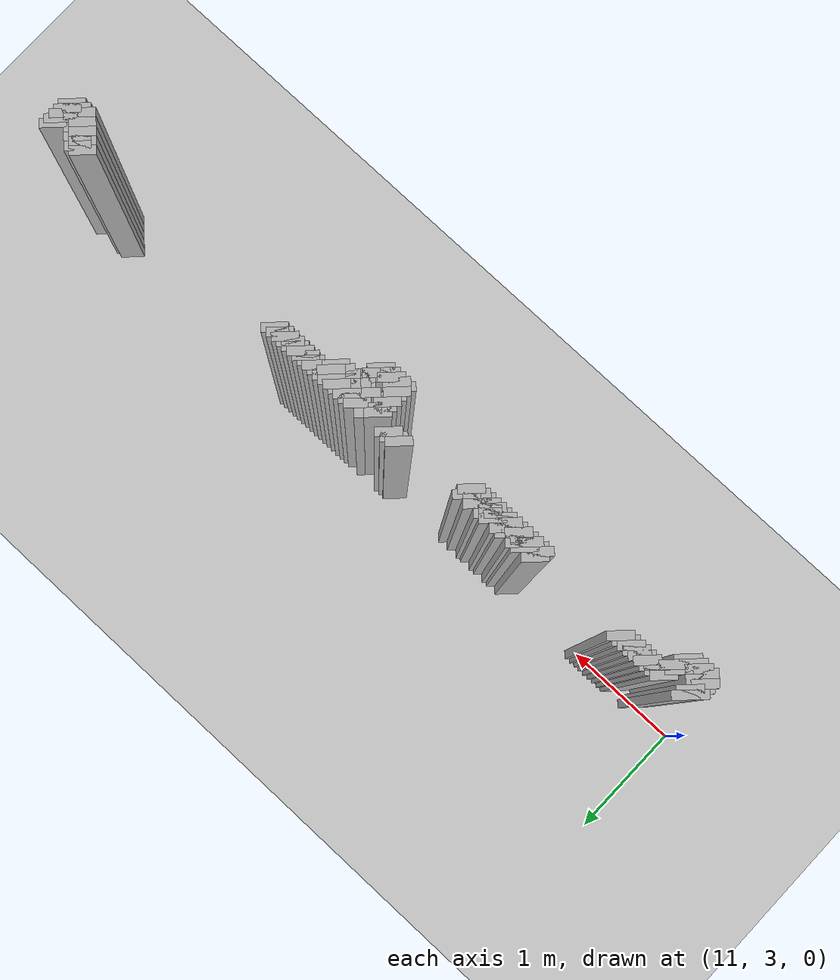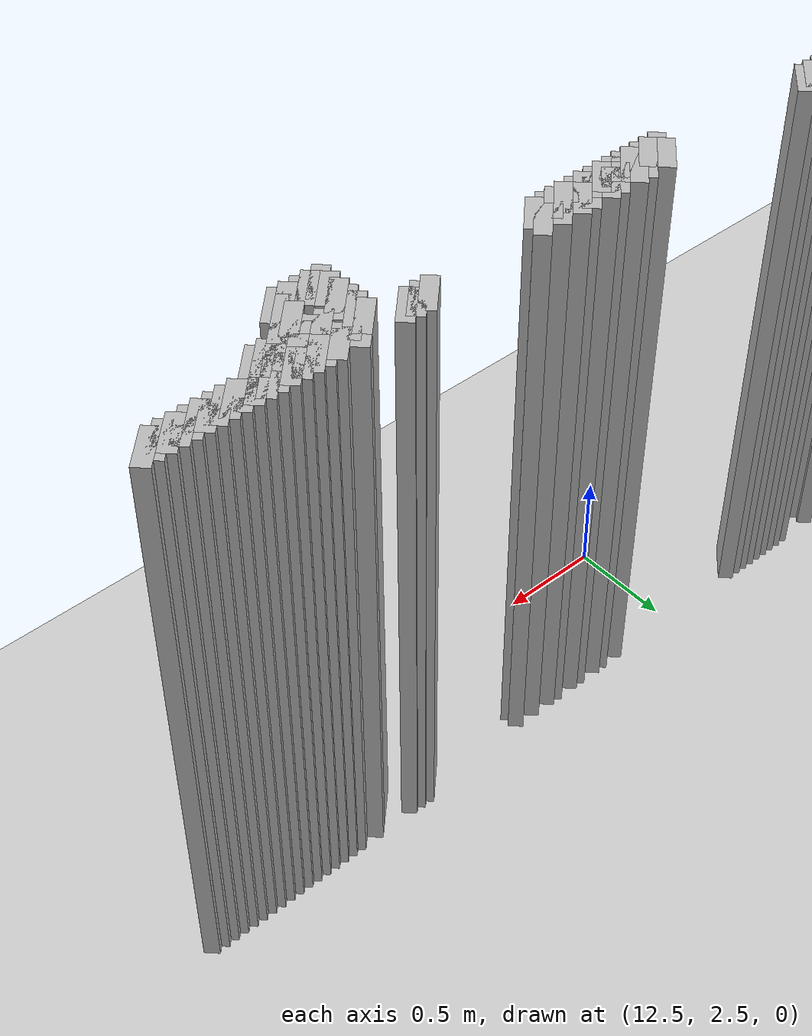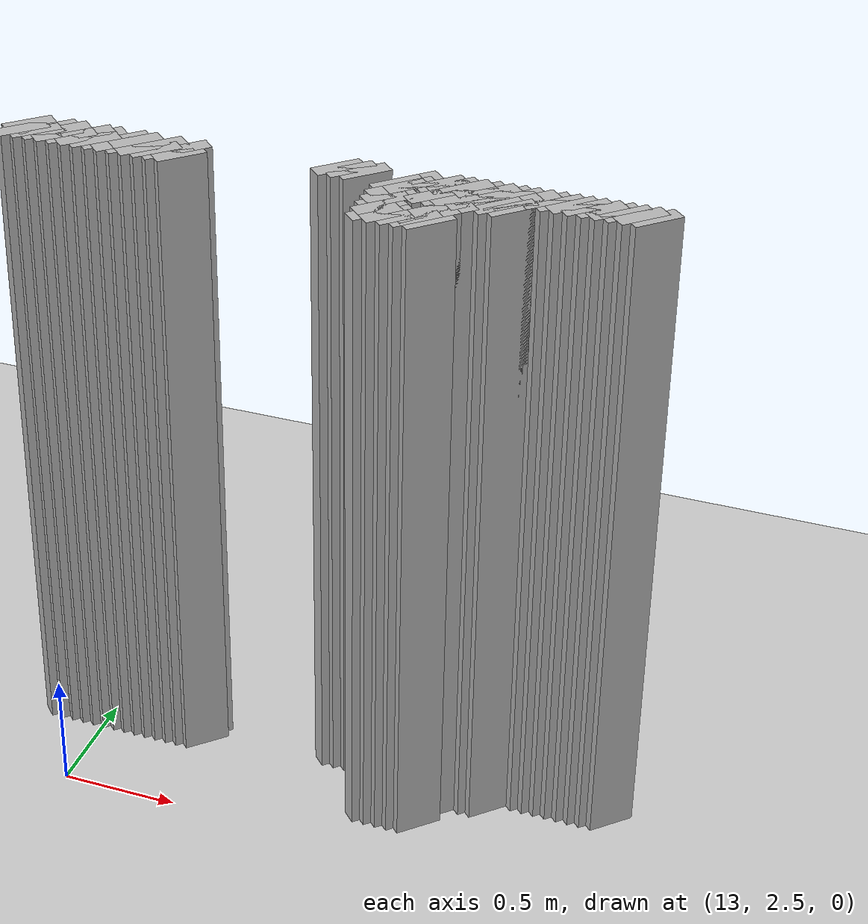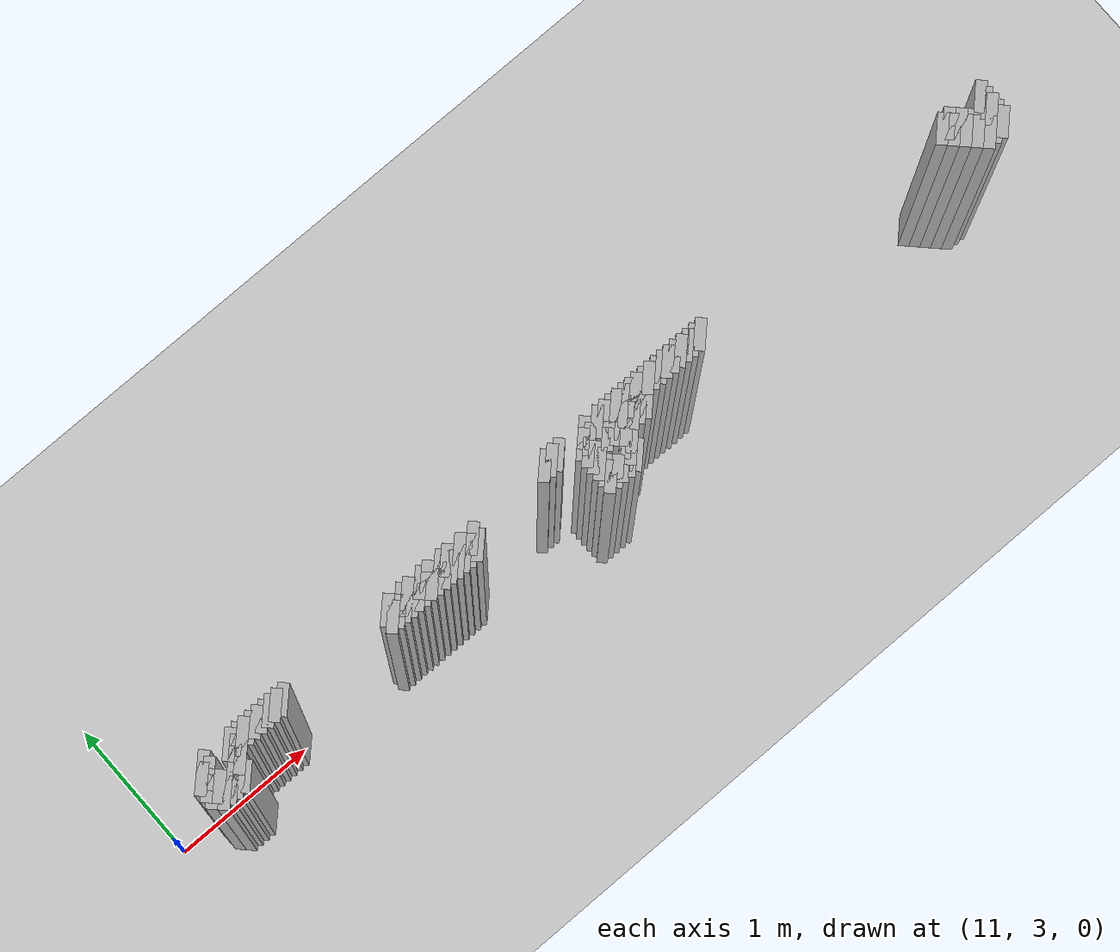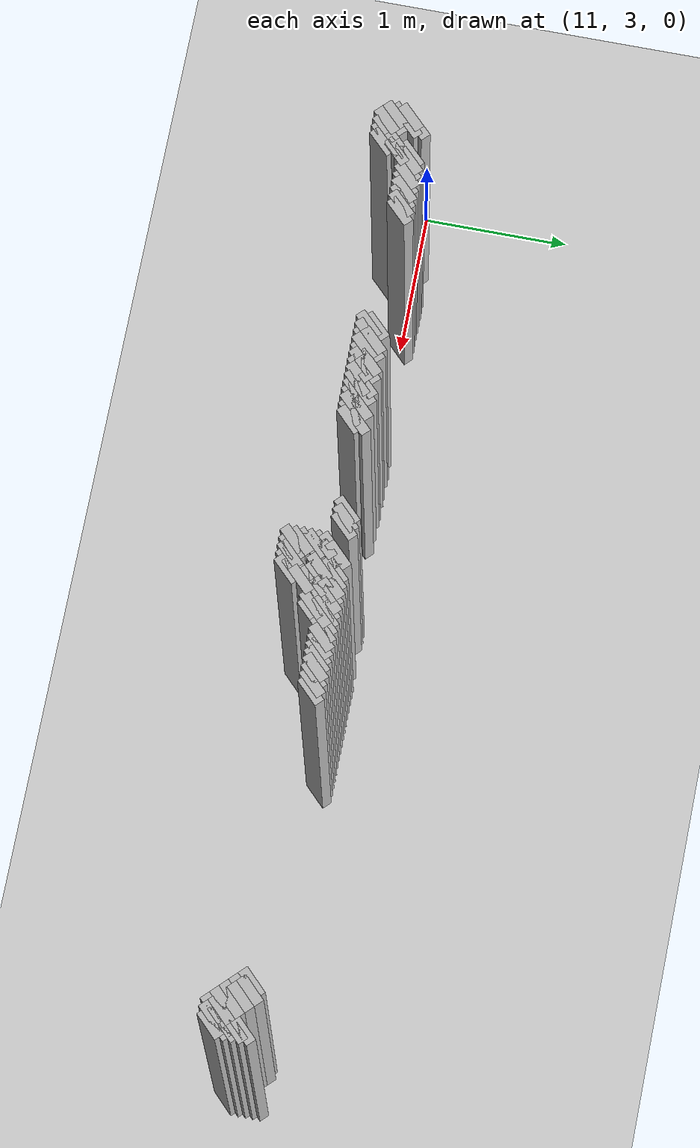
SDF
<sdf version="1.5">
 <world name="default">
  <include><uri>model://ground_plane</uri></include>
  <include><uri>model://sun</uri></include>
  <model name="grey_wall_3818">
   <static>1</static>
   <link name="link">
    <pose>14.05 3.0500000000000003  1.4 0 0 -0.7853981633974394</pose>
    <collision name="collision">
     <geometry><box><size>0.07071067811865513 .2  2.8</size></box></geometry>
    </collision>
    <visual name="visual">
     <cast_shadows>0</cast_shadows>
     <geometry><box><size>0.07071067811865513 .2  2.8</size></box></geometry>
    </visual>
   </link>
  </model>
  <model name="grey_wall_3819">
   <static>1</static>
   <link name="link">
    <pose>14.100000000000001 3.0500000000000003  1.4 0 0 -0.7853981633974394</pose>
    <collision name="collision">
     <geometry><box><size>0.07071067811865513 .2  2.8</size></box></geometry>
    </collision>
    <visual name="visual">
     <cast_shadows>0</cast_shadows>
     <geometry><box><size>0.07071067811865513 .2  2.8</size></box></geometry>
    </visual>
   </link>
  </model>
  <model name="grey_wall_3820">
   <static>1</static>
   <link name="link">
    <pose>14.15 3.0500000000000003  1.4 0 0 -0.7853981633974394</pose>
    <collision name="collision">
     <geometry><box><size>0.07071067811865513 .2  2.8</size></box></geometry>
    </collision>
    <visual name="visual">
     <cast_shadows>0</cast_shadows>
     <geometry><box><size>0.07071067811865513 .2  2.8</size></box></geometry>
    </visual>
   </link>
  </model>
  <model name="grey_wall_3821">
   <static>1</static>
   <link name="link">
    <pose>14.350000000000001 3.0500000000000003  1.4 0 0 -0.7853981633974394</pose>
    <collision name="collision">
     <geometry><box><size>0.07071067811865513 .2  2.8</size></box></geometry>
    </collision>
    <visual name="visual">
     <cast_shadows>0</cast_shadows>
     <geometry><box><size>0.07071067811865513 .2  2.8</size></box></geometry>
    </visual>
   </link>
  </model>
  <model name="grey_wall_3822">
   <static>1</static>
   <link name="link">
    <pose>14.450000000000001 3.0500000000000003  1.4 0 0 -0.7853981633974394</pose>
    <collision name="collision">
     <geometry><box><size>0.07071067811865513 .2  2.8</size></box></geometry>
    </collision>
    <visual name="visual">
     <cast_shadows>0</cast_shadows>
     <geometry><box><size>0.07071067811865513 .2  2.8</size></box></geometry>
    </visual>
   </link>
  </model>
  <model name="grey_wall_3823">
   <static>1</static>
   <link name="link">
    <pose>14.5 3.0500000000000003  1.4 0 0 -0.7853981633974394</pose>
    <collision name="collision">
     <geometry><box><size>0.07071067811865513 .2  2.8</size></box></geometry>
    </collision>
    <visual name="visual">
     <cast_shadows>0</cast_shadows>
     <geometry><box><size>0.07071067811865513 .2  2.8</size></box></geometry>
    </visual>
   </link>
  </model>
  <model name="grey_wall_3824">
   <static>1</static>
   <link name="link">
    <pose>14.55 3.0500000000000003  1.4 0 0 -0.7853981633974394</pose>
    <collision name="collision">
     <geometry><box><size>0.07071067811865513 .2  2.8</size></box></geometry>
    </collision>
    <visual name="visual">
     <cast_shadows>0</cast_shadows>
     <geometry><box><size>0.07071067811865513 .2  2.8</size></box></geometry>
    </visual>
   </link>
  </model>
  <model name="grey_wall_3825">
   <static>1</static>
   <link name="link">
    <pose>14.600000000000001 3.0500000000000003  1.4 0 0 -0.7853981633974394</pose>
    <collision name="collision">
     <geometry><box><size>0.07071067811865513 .2  2.8</size></box></geometry>
    </collision>
    <visual name="visual">
     <cast_shadows>0</cast_shadows>
     <geometry><box><size>0.07071067811865513 .2  2.8</size></box></geometry>
    </visual>
   </link>
  </model>
  <model name="grey_wall_3826">
   <static>1</static>
   <link name="link">
    <pose>14.65 3.0500000000000003  1.4 0 0 -0.7853981633974394</pose>
    <collision name="collision">
     <geometry><box><size>0.07071067811865513 .2  2.8</size></box></geometry>
    </collision>
    <visual name="visual">
     <cast_shadows>0</cast_shadows>
     <geometry><box><size>0.07071067811865513 .2  2.8</size></box></geometry>
    </visual>
   </link>
  </model>
  <model name="grey_wall_3827">
   <static>1</static>
   <link name="link">
    <pose>14.700000000000001 3.0500000000000003  1.4 0 0 -0.7853981633974394</pose>
    <collision name="collision">
     <geometry><box><size>0.07071067811865513 .2  2.8</size></box></geometry>
    </collision>
    <visual name="visual">
     <cast_shadows>0</cast_shadows>
     <geometry><box><size>0.07071067811865513 .2  2.8</size></box></geometry>
    </visual>
   </link>
  </model>
  <model name="grey_wall_3828">
   <static>1</static>
   <link name="link">
    <pose>14.75 3.0500000000000003  1.4 0 0 -0.7853981633974394</pose>
    <collision name="collision">
     <geometry><box><size>0.07071067811865513 .2  2.8</size></box></geometry>
    </collision>
    <visual name="visual">
     <cast_shadows>0</cast_shadows>
     <geometry><box><size>0.07071067811865513 .2  2.8</size></box></geometry>
    </visual>
   </link>
  </model>
  <model name="grey_wall_3829">
   <static>1</static>
   <link name="link">
    <pose>14.8 3.0500000000000003  1.4 0 0 -0.7853981633974394</pose>
    <collision name="collision">
     <geometry><box><size>0.07071067811865513 .2  2.8</size></box></geometry>
    </collision>
    <visual name="visual">
     <cast_shadows>0</cast_shadows>
     <geometry><box><size>0.07071067811865513 .2  2.8</size></box></geometry>
    </visual>
   </link>
  </model>
  <model name="grey_wall_3830">
   <static>1</static>
   <link name="link">
    <pose>14.850000000000001 3.0500000000000003  1.4 0 0 -0.7853981633974394</pose>
    <collision name="collision">
     <geometry><box><size>0.07071067811865513 .2  2.8</size></box></geometry>
    </collision>
    <visual name="visual">
     <cast_shadows>0</cast_shadows>
     <geometry><box><size>0.07071067811865513 .2  2.8</size></box></geometry>
    </visual>
   </link>
  </model>
  <model name="grey_wall_3831">
   <static>1</static>
   <link name="link">
    <pose>14.9 3.0500000000000003  1.4 0 0 -0.7853981633974394</pose>
    <collision name="collision">
     <geometry><box><size>0.07071067811865513 .2  2.8</size></box></geometry>
    </collision>
    <visual name="visual">
     <cast_shadows>0</cast_shadows>
     <geometry><box><size>0.07071067811865513 .2  2.8</size></box></geometry>
    </visual>
   </link>
  </model>
  <model name="grey_wall_3832">
   <static>1</static>
   <link name="link">
    <pose>14.950000000000001 3.0500000000000003  1.4 0 0 -0.7853981633974394</pose>
    <collision name="collision">
     <geometry><box><size>0.07071067811865513 .2  2.8</size></box></geometry>
    </collision>
    <visual name="visual">
     <cast_shadows>0</cast_shadows>
     <geometry><box><size>0.07071067811865513 .2  2.8</size></box></geometry>
    </visual>
   </link>
  </model>
  <model name="grey_wall_3833">
   <static>1</static>
   <link name="link">
    <pose>15.0 3.0500000000000003  1.4 0 0 -0.7853981633974394</pose>
    <collision name="collision">
     <geometry><box><size>0.07071067811865513 .2  2.8</size></box></geometry>
    </collision>
    <visual name="visual">
     <cast_shadows>0</cast_shadows>
     <geometry><box><size>0.07071067811865513 .2  2.8</size></box></geometry>
    </visual>
   </link>
  </model>
  <model name="grey_wall_3834">
   <static>1</static>
   <link name="link">
    <pose>15.05 3.0500000000000003  1.4 0 0 -0.7853981633974394</pose>
    <collision name="collision">
     <geometry><box><size>0.07071067811865513 .2  2.8</size></box></geometry>
    </collision>
    <visual name="visual">
     <cast_shadows>0</cast_shadows>
     <geometry><box><size>0.07071067811865513 .2  2.8</size></box></geometry>
    </visual>
   </link>
  </model>
  <model name="grey_wall_3835">
   <static>1</static>
   <link name="link">
    <pose>15.100000000000001 3.0500000000000003  1.4 0 0 -0.7853981633974394</pose>
    <collision name="collision">
     <geometry><box><size>0.07071067811865513 .2  2.8</size></box></geometry>
    </collision>
    <visual name="visual">
     <cast_shadows>0</cast_shadows>
     <geometry><box><size>0.07071067811865513 .2  2.8</size></box></geometry>
    </visual>
   </link>
  </model>
  <model name="grey_wall_3836">
   <static>1</static>
   <link name="link">
    <pose>15.15 3.0500000000000003  1.4 0 0 -0.7853981633974394</pose>
    <collision name="collision">
     <geometry><box><size>0.07071067811865513 .2  2.8</size></box></geometry>
    </collision>
    <visual name="visual">
     <cast_shadows>0</cast_shadows>
     <geometry><box><size>0.07071067811865513 .2  2.8</size></box></geometry>
    </visual>
   </link>
  </model>
  <model name="grey_wall_3837">
   <static>1</static>
   <link name="link">
    <pose>15.200000000000001 3.0500000000000003  1.4 0 0 -0.7853981633974394</pose>
    <collision name="collision">
     <geometry><box><size>0.07071067811865513 .2  2.8</size></box></geometry>
    </collision>
    <visual name="visual">
     <cast_shadows>0</cast_shadows>
     <geometry><box><size>0.07071067811865513 .2  2.8</size></box></geometry>
    </visual>
   </link>
  </model>
  <model name="grey_wall_3838">
   <static>1</static>
   <link name="link">
    <pose>15.25 3.0500000000000003  1.4 0 0 -0.7853981633974394</pose>
    <collision name="collision">
     <geometry><box><size>0.07071067811865513 .2  2.8</size></box></geometry>
    </collision>
    <visual name="visual">
     <cast_shadows>0</cast_shadows>
     <geometry><box><size>0.07071067811865513 .2  2.8</size></box></geometry>
    </visual>
   </link>
  </model>
  <model name="grey_wall_3839">
   <static>1</static>
   <link name="link">
    <pose>17.150000000000002 3.0500000000000003  1.4 0 0 -0.7853981633974749</pose>
    <collision name="collision">
     <geometry><box><size>0.07071067811865261 .2  2.8</size></box></geometry>
    </collision>
    <visual name="visual">
     <cast_shadows>0</cast_shadows>
     <geometry><box><size>0.07071067811865261 .2  2.8</size></box></geometry>
    </visual>
   </link>
  </model>
  <model name="grey_wall_3840">
   <static>1</static>
   <link name="link">
    <pose>17.2 3.0500000000000003  1.4 0 0 -0.7853981633974749</pose>
    <collision name="collision">
     <geometry><box><size>0.07071067811865261 .2  2.8</size></box></geometry>
    </collision>
    <visual name="visual">
     <cast_shadows>0</cast_shadows>
     <geometry><box><size>0.07071067811865261 .2  2.8</size></box></geometry>
    </visual>
   </link>
  </model>
  <model name="grey_wall_3841">
   <static>1</static>
   <link name="link">
    <pose>17.45 3.0500000000000003  1.4 0 0 -0.7853981633974749</pose>
    <collision name="collision">
     <geometry><box><size>0.07071067811865261 .2  2.8</size></box></geometry>
    </collision>
    <visual name="visual">
     <cast_shadows>0</cast_shadows>
     <geometry><box><size>0.07071067811865261 .2  2.8</size></box></geometry>
    </visual>
   </link>
  </model>
  <model name="grey_wall_3842">
   <static>1</static>
   <link name="link">
    <pose>11.4 3.0  1.4 0 0 -0.7853981633974394</pose>
    <collision name="collision">
     <geometry><box><size>0.07071067811865513 .2  2.8</size></box></geometry>
    </collision>
    <visual name="visual">
     <cast_shadows>0</cast_shadows>
     <geometry><box><size>0.07071067811865513 .2  2.8</size></box></geometry>
    </visual>
   </link>
  </model>
  <model name="grey_wall_3843">
   <static>1</static>
   <link name="link">
    <pose>11.600000000000001 3.0  1.4 0 0 -0.7853981633974394</pose>
    <collision name="collision">
     <geometry><box><size>0.07071067811865513 .2  2.8</size></box></geometry>
    </collision>
    <visual name="visual">
     <cast_shadows>0</cast_shadows>
     <geometry><box><size>0.07071067811865513 .2  2.8</size></box></geometry>
    </visual>
   </link>
  </model>
  <model name="grey_wall_3844">
   <static>1</static>
   <link name="link">
    <pose>11.65 3.0  1.4 0 0 -0.7853981633974394</pose>
    <collision name="collision">
     <geometry><box><size>0.07071067811865513 .2  2.8</size></box></geometry>
    </collision>
    <visual name="visual">
     <cast_shadows>0</cast_shadows>
     <geometry><box><size>0.07071067811865513 .2  2.8</size></box></geometry>
    </visual>
   </link>
  </model>
  <model name="grey_wall_3845">
   <static>1</static>
   <link name="link">
    <pose>11.700000000000001 3.0  1.4 0 0 -0.7853981633974394</pose>
    <collision name="collision">
     <geometry><box><size>0.07071067811865513 .2  2.8</size></box></geometry>
    </collision>
    <visual name="visual">
     <cast_shadows>0</cast_shadows>
     <geometry><box><size>0.07071067811865513 .2  2.8</size></box></geometry>
    </visual>
   </link>
  </model>
  <model name="grey_wall_3846">
   <static>1</static>
   <link name="link">
    <pose>11.75 3.0  1.4 0 0 -0.7853981633974394</pose>
    <collision name="collision">
     <geometry><box><size>0.07071067811865513 .2  2.8</size></box></geometry>
    </collision>
    <visual name="visual">
     <cast_shadows>0</cast_shadows>
     <geometry><box><size>0.07071067811865513 .2  2.8</size></box></geometry>
    </visual>
   </link>
  </model>
  <model name="grey_wall_3847">
   <static>1</static>
   <link name="link">
    <pose>11.8 3.0  1.4 0 0 -0.7853981633974394</pose>
    <collision name="collision">
     <geometry><box><size>0.07071067811865513 .2  2.8</size></box></geometry>
    </collision>
    <visual name="visual">
     <cast_shadows>0</cast_shadows>
     <geometry><box><size>0.07071067811865513 .2  2.8</size></box></geometry>
    </visual>
   </link>
  </model>
  <model name="grey_wall_3848">
   <static>1</static>
   <link name="link">
    <pose>11.850000000000001 3.0  1.4 0 0 -0.7853981633974394</pose>
    <collision name="collision">
     <geometry><box><size>0.07071067811865513 .2  2.8</size></box></geometry>
    </collision>
    <visual name="visual">
     <cast_shadows>0</cast_shadows>
     <geometry><box><size>0.07071067811865513 .2  2.8</size></box></geometry>
    </visual>
   </link>
  </model>
  <model name="grey_wall_3849">
   <static>1</static>
   <link name="link">
    <pose>11.9 3.0  1.4 0 0 -0.7853981633974394</pose>
    <collision name="collision">
     <geometry><box><size>0.07071067811865513 .2  2.8</size></box></geometry>
    </collision>
    <visual name="visual">
     <cast_shadows>0</cast_shadows>
     <geometry><box><size>0.07071067811865513 .2  2.8</size></box></geometry>
    </visual>
   </link>
  </model>
  <model name="grey_wall_3850">
   <static>1</static>
   <link name="link">
    <pose>11.950000000000001 3.0  1.4 0 0 -0.7853981633974394</pose>
    <collision name="collision">
     <geometry><box><size>0.07071067811865513 .2  2.8</size></box></geometry>
    </collision>
    <visual name="visual">
     <cast_shadows>0</cast_shadows>
     <geometry><box><size>0.07071067811865513 .2  2.8</size></box></geometry>
    </visual>
   </link>
  </model>
  <model name="grey_wall_3851">
   <static>1</static>
   <link name="link">
    <pose>12.0 3.0  1.4 0 0 -0.7853981633974394</pose>
    <collision name="collision">
     <geometry><box><size>0.07071067811865513 .2  2.8</size></box></geometry>
    </collision>
    <visual name="visual">
     <cast_shadows>0</cast_shadows>
     <geometry><box><size>0.07071067811865513 .2  2.8</size></box></geometry>
    </visual>
   </link>
  </model>
  <model name="grey_wall_3852">
   <static>1</static>
   <link name="link">
    <pose>12.8 3.0  1.4 0 0 -0.7853981633974394</pose>
    <collision name="collision">
     <geometry><box><size>0.07071067811865513 .2  2.8</size></box></geometry>
    </collision>
    <visual name="visual">
     <cast_shadows>0</cast_shadows>
     <geometry><box><size>0.07071067811865513 .2  2.8</size></box></geometry>
    </visual>
   </link>
  </model>
  <model name="grey_wall_3853">
   <static>1</static>
   <link name="link">
    <pose>12.9 3.0  1.4 0 0 -0.7853981633974394</pose>
    <collision name="collision">
     <geometry><box><size>0.07071067811865513 .2  2.8</size></box></geometry>
    </collision>
    <visual name="visual">
     <cast_shadows>0</cast_shadows>
     <geometry><box><size>0.07071067811865513 .2  2.8</size></box></geometry>
    </visual>
   </link>
  </model>
  <model name="grey_wall_3854">
   <static>1</static>
   <link name="link">
    <pose>12.950000000000001 3.0  1.4 0 0 -0.7853981633974394</pose>
    <collision name="collision">
     <geometry><box><size>0.07071067811865513 .2  2.8</size></box></geometry>
    </collision>
    <visual name="visual">
     <cast_shadows>0</cast_shadows>
     <geometry><box><size>0.07071067811865513 .2  2.8</size></box></geometry>
    </visual>
   </link>
  </model>
  <model name="grey_wall_3855">
   <static>1</static>
   <link name="link">
    <pose>13.05 3.0  1.4 0 0 -0.7853981633974394</pose>
    <collision name="collision">
     <geometry><box><size>0.07071067811865513 .2  2.8</size></box></geometry>
    </collision>
    <visual name="visual">
     <cast_shadows>0</cast_shadows>
     <geometry><box><size>0.07071067811865513 .2  2.8</size></box></geometry>
    </visual>
   </link>
  </model>
  <model name="grey_wall_3856">
   <static>1</static>
   <link name="link">
    <pose>13.100000000000001 3.0  1.4 0 0 -0.7853981633974394</pose>
    <collision name="collision">
     <geometry><box><size>0.07071067811865513 .2  2.8</size></box></geometry>
    </collision>
    <visual name="visual">
     <cast_shadows>0</cast_shadows>
     <geometry><box><size>0.07071067811865513 .2  2.8</size></box></geometry>
    </visual>
   </link>
  </model>
  <model name="grey_wall_3857">
   <static>1</static>
   <link name="link">
    <pose>13.200000000000001 3.0  1.4 0 0 -0.7853981633974394</pose>
    <collision name="collision">
     <geometry><box><size>0.07071067811865513 .2  2.8</size></box></geometry>
    </collision>
    <visual name="visual">
     <cast_shadows>0</cast_shadows>
     <geometry><box><size>0.07071067811865513 .2  2.8</size></box></geometry>
    </visual>
   </link>
  </model>
  <model name="grey_wall_3858">
   <static>1</static>
   <link name="link">
    <pose>13.25 3.0  1.4 0 0 -0.7853981633974394</pose>
    <collision name="collision">
     <geometry><box><size>0.07071067811865513 .2  2.8</size></box></geometry>
    </collision>
    <visual name="visual">
     <cast_shadows>0</cast_shadows>
     <geometry><box><size>0.07071067811865513 .2  2.8</size></box></geometry>
    </visual>
   </link>
  </model>
  <model name="grey_wall_3859">
   <static>1</static>
   <link name="link">
    <pose>13.350000000000001 3.0  1.4 0 0 -0.7853981633974394</pose>
    <collision name="collision">
     <geometry><box><size>0.07071067811865513 .2  2.8</size></box></geometry>
    </collision>
    <visual name="visual">
     <cast_shadows>0</cast_shadows>
     <geometry><box><size>0.07071067811865513 .2  2.8</size></box></geometry>
    </visual>
   </link>
  </model>
  <model name="grey_wall_3860">
   <static>1</static>
   <link name="link">
    <pose>13.450000000000001 3.0  1.4 0 0 -0.7853981633974394</pose>
    <collision name="collision">
     <geometry><box><size>0.07071067811865513 .2  2.8</size></box></geometry>
    </collision>
    <visual name="visual">
     <cast_shadows>0</cast_shadows>
     <geometry><box><size>0.07071067811865513 .2  2.8</size></box></geometry>
    </visual>
   </link>
  </model>
  <model name="grey_wall_3861">
   <static>1</static>
   <link name="link">
    <pose>14.3 3.0  1.4 0 0 -0.7853981633974394</pose>
    <collision name="collision">
     <geometry><box><size>0.07071067811865513 .2  2.8</size></box></geometry>
    </collision>
    <visual name="visual">
     <cast_shadows>0</cast_shadows>
     <geometry><box><size>0.07071067811865513 .2  2.8</size></box></geometry>
    </visual>
   </link>
  </model>
  <model name="grey_wall_3862">
   <static>1</static>
   <link name="link">
    <pose>14.350000000000001 3.0  1.4 0 0 -0.7853981633974394</pose>
    <collision name="collision">
     <geometry><box><size>0.07071067811865513 .2  2.8</size></box></geometry>
    </collision>
    <visual name="visual">
     <cast_shadows>0</cast_shadows>
     <geometry><box><size>0.07071067811865513 .2  2.8</size></box></geometry>
    </visual>
   </link>
  </model>
  <model name="grey_wall_3863">
   <static>1</static>
   <link name="link">
    <pose>14.600000000000001 3.0  1.4 0 0 -0.7853981633974394</pose>
    <collision name="collision">
     <geometry><box><size>0.07071067811865513 .2  2.8</size></box></geometry>
    </collision>
    <visual name="visual">
     <cast_shadows>0</cast_shadows>
     <geometry><box><size>0.07071067811865513 .2  2.8</size></box></geometry>
    </visual>
   </link>
  </model>
  <model name="grey_wall_3864">
   <static>1</static>
   <link name="link">
    <pose>14.75 3.0  1.4 0 0 -0.7853981633974394</pose>
    <collision name="collision">
     <geometry><box><size>0.07071067811865513 .2  2.8</size></box></geometry>
    </collision>
    <visual name="visual">
     <cast_shadows>0</cast_shadows>
     <geometry><box><size>0.07071067811865513 .2  2.8</size></box></geometry>
    </visual>
   </link>
  </model>
  <model name="grey_wall_3865">
   <static>1</static>
   <link name="link">
    <pose>17.2 3.0  1.4 0 0 -0.7853981633974749</pose>
    <collision name="collision">
     <geometry><box><size>0.07071067811865261 .2  2.8</size></box></geometry>
    </collision>
    <visual name="visual">
     <cast_shadows>0</cast_shadows>
     <geometry><box><size>0.07071067811865261 .2  2.8</size></box></geometry>
    </visual>
   </link>
  </model>
  <model name="grey_wall_3866">
   <static>1</static>
   <link name="link">
    <pose>17.25 3.0  1.4 0 0 -0.7853981633974749</pose>
    <collision name="collision">
     <geometry><box><size>0.07071067811865261 .2  2.8</size></box></geometry>
    </collision>
    <visual name="visual">
     <cast_shadows>0</cast_shadows>
     <geometry><box><size>0.07071067811865261 .2  2.8</size></box></geometry>
    </visual>
   </link>
  </model>
  <model name="grey_wall_3867">
   <static>1</static>
   <link name="link">
    <pose>17.45 3.0  1.4 0 0 -0.7853981633974749</pose>
    <collision name="collision">
     <geometry><box><size>0.07071067811865261 .2  2.8</size></box></geometry>
    </collision>
    <visual name="visual">
     <cast_shadows>0</cast_shadows>
     <geometry><box><size>0.07071067811865261 .2  2.8</size></box></geometry>
    </visual>
   </link>
  </model>
  <model name="grey_wall_3868">
   <static>1</static>
   <link name="link">
    <pose>11.350000000000001 2.95  1.4 0 0 -0.7853981633974394</pose>
    <collision name="collision">
     <geometry><box><size>0.07071067811865513 .2  2.8</size></box></geometry>
    </collision>
    <visual name="visual">
     <cast_shadows>0</cast_shadows>
     <geometry><box><size>0.07071067811865513 .2  2.8</size></box></geometry>
    </visual>
   </link>
  </model>
  <model name="grey_wall_3869">
   <static>1</static>
   <link name="link">
    <pose>11.4 2.95  1.4 0 0 -0.7853981633974394</pose>
    <collision name="collision">
     <geometry><box><size>0.07071067811865513 .2  2.8</size></box></geometry>
    </collision>
    <visual name="visual">
     <cast_shadows>0</cast_shadows>
     <geometry><box><size>0.07071067811865513 .2  2.8</size></box></geometry>
    </visual>
   </link>
  </model>
  <model name="grey_wall_3870">
   <static>1</static>
   <link name="link">
    <pose>11.600000000000001 2.95  1.4 0 0 -0.7853981633974394</pose>
    <collision name="collision">
     <geometry><box><size>0.07071067811865513 .2  2.8</size></box></geometry>
    </collision>
    <visual name="visual">
     <cast_shadows>0</cast_shadows>
     <geometry><box><size>0.07071067811865513 .2  2.8</size></box></geometry>
    </visual>
   </link>
  </model>
  <model name="grey_wall_3871">
   <static>1</static>
   <link name="link">
    <pose>12.8 2.95  1.4 0 0 -0.7853981633974394</pose>
    <collision name="collision">
     <geometry><box><size>0.07071067811865513 .2  2.8</size></box></geometry>
    </collision>
    <visual name="visual">
     <cast_shadows>0</cast_shadows>
     <geometry><box><size>0.07071067811865513 .2  2.8</size></box></geometry>
    </visual>
   </link>
  </model>
  <model name="grey_wall_3872">
   <static>1</static>
   <link name="link">
    <pose>12.850000000000001 2.95  1.4 0 0 -0.7853981633974394</pose>
    <collision name="collision">
     <geometry><box><size>0.07071067811865513 .2  2.8</size></box></geometry>
    </collision>
    <visual name="visual">
     <cast_shadows>0</cast_shadows>
     <geometry><box><size>0.07071067811865513 .2  2.8</size></box></geometry>
    </visual>
   </link>
  </model>
  <model name="grey_wall_3873">
   <static>1</static>
   <link name="link">
    <pose>12.9 2.95  1.4 0 0 -0.7853981633974394</pose>
    <collision name="collision">
     <geometry><box><size>0.07071067811865513 .2  2.8</size></box></geometry>
    </collision>
    <visual name="visual">
     <cast_shadows>0</cast_shadows>
     <geometry><box><size>0.07071067811865513 .2  2.8</size></box></geometry>
    </visual>
   </link>
  </model>
  <model name="grey_wall_3874">
   <static>1</static>
   <link name="link">
    <pose>12.950000000000001 2.95  1.4 0 0 -0.7853981633974394</pose>
    <collision name="collision">
     <geometry><box><size>0.07071067811865513 .2  2.8</size></box></geometry>
    </collision>
    <visual name="visual">
     <cast_shadows>0</cast_shadows>
     <geometry><box><size>0.07071067811865513 .2  2.8</size></box></geometry>
    </visual>
   </link>
  </model>
  <model name="grey_wall_3875">
   <static>1</static>
   <link name="link">
    <pose>13.0 2.95  1.4 0 0 -0.7853981633974394</pose>
    <collision name="collision">
     <geometry><box><size>0.07071067811865513 .2  2.8</size></box></geometry>
    </collision>
    <visual name="visual">
     <cast_shadows>0</cast_shadows>
     <geometry><box><size>0.07071067811865513 .2  2.8</size></box></geometry>
    </visual>
   </link>
  </model>
  <model name="grey_wall_3876">
   <static>1</static>
   <link name="link">
    <pose>13.05 2.95  1.4 0 0 -0.7853981633974394</pose>
    <collision name="collision">
     <geometry><box><size>0.07071067811865513 .2  2.8</size></box></geometry>
    </collision>
    <visual name="visual">
     <cast_shadows>0</cast_shadows>
     <geometry><box><size>0.07071067811865513 .2  2.8</size></box></geometry>
    </visual>
   </link>
  </model>
  <model name="grey_wall_3877">
   <static>1</static>
   <link name="link">
    <pose>13.100000000000001 2.95  1.4 0 0 -0.7853981633974394</pose>
    <collision name="collision">
     <geometry><box><size>0.07071067811865513 .2  2.8</size></box></geometry>
    </collision>
    <visual name="visual">
     <cast_shadows>0</cast_shadows>
     <geometry><box><size>0.07071067811865513 .2  2.8</size></box></geometry>
    </visual>
   </link>
  </model>
  <model name="grey_wall_3878">
   <static>1</static>
   <link name="link">
    <pose>13.15 2.95  1.4 0 0 -0.7853981633974394</pose>
    <collision name="collision">
     <geometry><box><size>0.07071067811865513 .2  2.8</size></box></geometry>
    </collision>
    <visual name="visual">
     <cast_shadows>0</cast_shadows>
     <geometry><box><size>0.07071067811865513 .2  2.8</size></box></geometry>
    </visual>
   </link>
  </model>
  <model name="grey_wall_3879">
   <static>1</static>
   <link name="link">
    <pose>13.200000000000001 2.95  1.4 0 0 -0.7853981633974394</pose>
    <collision name="collision">
     <geometry><box><size>0.07071067811865513 .2  2.8</size></box></geometry>
    </collision>
    <visual name="visual">
     <cast_shadows>0</cast_shadows>
     <geometry><box><size>0.07071067811865513 .2  2.8</size></box></geometry>
    </visual>
   </link>
  </model>
  <model name="grey_wall_3880">
   <static>1</static>
   <link name="link">
    <pose>13.25 2.95  1.4 0 0 -0.7853981633974394</pose>
    <collision name="collision">
     <geometry><box><size>0.07071067811865513 .2  2.8</size></box></geometry>
    </collision>
    <visual name="visual">
     <cast_shadows>0</cast_shadows>
     <geometry><box><size>0.07071067811865513 .2  2.8</size></box></geometry>
    </visual>
   </link>
  </model>
  <model name="grey_wall_3881">
   <static>1</static>
   <link name="link">
    <pose>13.3 2.95  1.4 0 0 -0.7853981633974394</pose>
    <collision name="collision">
     <geometry><box><size>0.07071067811865513 .2  2.8</size></box></geometry>
    </collision>
    <visual name="visual">
     <cast_shadows>0</cast_shadows>
     <geometry><box><size>0.07071067811865513 .2  2.8</size></box></geometry>
    </visual>
   </link>
  </model>
  <model name="grey_wall_3882">
   <static>1</static>
   <link name="link">
    <pose>13.350000000000001 2.95  1.4 0 0 -0.7853981633974394</pose>
    <collision name="collision">
     <geometry><box><size>0.07071067811865513 .2  2.8</size></box></geometry>
    </collision>
    <visual name="visual">
     <cast_shadows>0</cast_shadows>
     <geometry><box><size>0.07071067811865513 .2  2.8</size></box></geometry>
    </visual>
   </link>
  </model>
  <model name="grey_wall_3883">
   <static>1</static>
   <link name="link">
    <pose>13.4 2.95  1.4 0 0 -0.7853981633974394</pose>
    <collision name="collision">
     <geometry><box><size>0.07071067811865513 .2  2.8</size></box></geometry>
    </collision>
    <visual name="visual">
     <cast_shadows>0</cast_shadows>
     <geometry><box><size>0.07071067811865513 .2  2.8</size></box></geometry>
    </visual>
   </link>
  </model>
  <model name="grey_wall_3884">
   <static>1</static>
   <link name="link">
    <pose>13.450000000000001 2.95  1.4 0 0 -0.7853981633974394</pose>
    <collision name="collision">
     <geometry><box><size>0.07071067811865513 .2  2.8</size></box></geometry>
    </collision>
    <visual name="visual">
     <cast_shadows>0</cast_shadows>
     <geometry><box><size>0.07071067811865513 .2  2.8</size></box></geometry>
    </visual>
   </link>
  </model>
  <model name="grey_wall_3885">
   <static>1</static>
   <link name="link">
    <pose>14.3 2.95  1.4 0 0 -0.7853981633974394</pose>
    <collision name="collision">
     <geometry><box><size>0.07071067811865513 .2  2.8</size></box></geometry>
    </collision>
    <visual name="visual">
     <cast_shadows>0</cast_shadows>
     <geometry><box><size>0.07071067811865513 .2  2.8</size></box></geometry>
    </visual>
   </link>
  </model>
  <model name="grey_wall_3886">
   <static>1</static>
   <link name="link">
    <pose>14.450000000000001 2.95  1.4 0 0 -0.7853981633974394</pose>
    <collision name="collision">
     <geometry><box><size>0.07071067811865513 .2  2.8</size></box></geometry>
    </collision>
    <visual name="visual">
     <cast_shadows>0</cast_shadows>
     <geometry><box><size>0.07071067811865513 .2  2.8</size></box></geometry>
    </visual>
   </link>
  </model>
  <model name="grey_wall_3887">
   <static>1</static>
   <link name="link">
    <pose>14.5 2.95  1.4 0 0 -0.7853981633974394</pose>
    <collision name="collision">
     <geometry><box><size>0.07071067811865513 .2  2.8</size></box></geometry>
    </collision>
    <visual name="visual">
     <cast_shadows>0</cast_shadows>
     <geometry><box><size>0.07071067811865513 .2  2.8</size></box></geometry>
    </visual>
   </link>
  </model>
  <model name="grey_wall_3888">
   <static>1</static>
   <link name="link">
    <pose>14.55 2.95  1.4 0 0 -0.7853981633974394</pose>
    <collision name="collision">
     <geometry><box><size>0.07071067811865513 .2  2.8</size></box></geometry>
    </collision>
    <visual name="visual">
     <cast_shadows>0</cast_shadows>
     <geometry><box><size>0.07071067811865513 .2  2.8</size></box></geometry>
    </visual>
   </link>
  </model>
  <model name="grey_wall_3889">
   <static>1</static>
   <link name="link">
    <pose>14.600000000000001 2.95  1.4 0 0 -0.7853981633974394</pose>
    <collision name="collision">
     <geometry><box><size>0.07071067811865513 .2  2.8</size></box></geometry>
    </collision>
    <visual name="visual">
     <cast_shadows>0</cast_shadows>
     <geometry><box><size>0.07071067811865513 .2  2.8</size></box></geometry>
    </visual>
   </link>
  </model>
  <model name="grey_wall_3890">
   <static>1</static>
   <link name="link">
    <pose>14.65 2.95  1.4 0 0 -0.7853981633974394</pose>
    <collision name="collision">
     <geometry><box><size>0.07071067811865513 .2  2.8</size></box></geometry>
    </collision>
    <visual name="visual">
     <cast_shadows>0</cast_shadows>
     <geometry><box><size>0.07071067811865513 .2  2.8</size></box></geometry>
    </visual>
   </link>
  </model>
  <model name="grey_wall_3891">
   <static>1</static>
   <link name="link">
    <pose>14.700000000000001 2.95  1.4 0 0 -0.7853981633974394</pose>
    <collision name="collision">
     <geometry><box><size>0.07071067811865513 .2  2.8</size></box></geometry>
    </collision>
    <visual name="visual">
     <cast_shadows>0</cast_shadows>
     <geometry><box><size>0.07071067811865513 .2  2.8</size></box></geometry>
    </visual>
   </link>
  </model>
  <model name="grey_wall_3892">
   <static>1</static>
   <link name="link">
    <pose>14.75 2.95  1.4 0 0 -0.7853981633974394</pose>
    <collision name="collision">
     <geometry><box><size>0.07071067811865513 .2  2.8</size></box></geometry>
    </collision>
    <visual name="visual">
     <cast_shadows>0</cast_shadows>
     <geometry><box><size>0.07071067811865513 .2  2.8</size></box></geometry>
    </visual>
   </link>
  </model>
  <model name="grey_wall_3893">
   <static>1</static>
   <link name="link">
    <pose>17.25 2.95  1.4 0 0 -0.7853981633974749</pose>
    <collision name="collision">
     <geometry><box><size>0.07071067811865261 .2  2.8</size></box></geometry>
    </collision>
    <visual name="visual">
     <cast_shadows>0</cast_shadows>
     <geometry><box><size>0.07071067811865261 .2  2.8</size></box></geometry>
    </visual>
   </link>
  </model>
  <model name="grey_wall_3894">
   <static>1</static>
   <link name="link">
    <pose>17.3 2.95  1.4 0 0 -0.7853981633974749</pose>
    <collision name="collision">
     <geometry><box><size>0.07071067811865261 .2  2.8</size></box></geometry>
    </collision>
    <visual name="visual">
     <cast_shadows>0</cast_shadows>
     <geometry><box><size>0.07071067811865261 .2  2.8</size></box></geometry>
    </visual>
   </link>
  </model>
  <model name="grey_wall_3895">
   <static>1</static>
   <link name="link">
    <pose>17.45 2.95  1.4 0 0 -0.7853981633974749</pose>
    <collision name="collision">
     <geometry><box><size>0.07071067811865261 .2  2.8</size></box></geometry>
    </collision>
    <visual name="visual">
     <cast_shadows>0</cast_shadows>
     <geometry><box><size>0.07071067811865261 .2  2.8</size></box></geometry>
    </visual>
   </link>
  </model>
  <model name="grey_wall_3896">
   <static>1</static>
   <link name="link">
    <pose>11.350000000000001 2.9000000000000004  1.4 0 0 -0.7853981633974394</pose>
    <collision name="collision">
     <geometry><box><size>0.07071067811865513 .2  2.8</size></box></geometry>
    </collision>
    <visual name="visual">
     <cast_shadows>0</cast_shadows>
     <geometry><box><size>0.07071067811865513 .2  2.8</size></box></geometry>
    </visual>
   </link>
  </model>
  <model name="grey_wall_3897">
   <static>1</static>
   <link name="link">
    <pose>11.55 2.9000000000000004  1.4 0 0 -0.7853981633974394</pose>
    <collision name="collision">
     <geometry><box><size>0.07071067811865513 .2  2.8</size></box></geometry>
    </collision>
    <visual name="visual">
     <cast_shadows>0</cast_shadows>
     <geometry><box><size>0.07071067811865513 .2  2.8</size></box></geometry>
    </visual>
   </link>
  </model>
  <model name="grey_wall_3898">
   <static>1</static>
   <link name="link">
    <pose>11.600000000000001 2.9000000000000004  1.4 0 0 -0.7853981633974394</pose>
    <collision name="collision">
     <geometry><box><size>0.07071067811865513 .2  2.8</size></box></geometry>
    </collision>
    <visual name="visual">
     <cast_shadows>0</cast_shadows>
     <geometry><box><size>0.07071067811865513 .2  2.8</size></box></geometry>
    </visual>
   </link>
  </model>
  <model name="grey_wall_3899">
   <static>1</static>
   <link name="link">
    <pose>14.3 2.9000000000000004  1.4 0 0 -0.7853981633974394</pose>
    <collision name="collision">
     <geometry><box><size>0.07071067811865513 .2  2.8</size></box></geometry>
    </collision>
    <visual name="visual">
     <cast_shadows>0</cast_shadows>
     <geometry><box><size>0.07071067811865513 .2  2.8</size></box></geometry>
    </visual>
   </link>
  </model>
  <model name="grey_wall_3900">
   <static>1</static>
   <link name="link">
    <pose>14.55 2.9000000000000004  1.4 0 0 -0.7853981633974394</pose>
    <collision name="collision">
     <geometry><box><size>0.07071067811865513 .2  2.8</size></box></geometry>
    </collision>
    <visual name="visual">
     <cast_shadows>0</cast_shadows>
     <geometry><box><size>0.07071067811865513 .2  2.8</size></box></geometry>
    </visual>
   </link>
  </model>
  <model name="grey_wall_3901">
   <static>1</static>
   <link name="link">
    <pose>17.3 2.9000000000000004  1.4 0 0 -0.7853981633974749</pose>
    <collision name="collision">
     <geometry><box><size>0.07071067811865261 .2  2.8</size></box></geometry>
    </collision>
    <visual name="visual">
     <cast_shadows>0</cast_shadows>
     <geometry><box><size>0.07071067811865261 .2  2.8</size></box></geometry>
    </visual>
   </link>
  </model>
  <model name="grey_wall_3902">
   <static>1</static>
   <link name="link">
    <pose>17.35 2.9000000000000004  1.4 0 0 -0.7853981633974749</pose>
    <collision name="collision">
     <geometry><box><size>0.07071067811865261 .2  2.8</size></box></geometry>
    </collision>
    <visual name="visual">
     <cast_shadows>0</cast_shadows>
     <geometry><box><size>0.07071067811865261 .2  2.8</size></box></geometry>
    </visual>
   </link>
  </model>
  <model name="grey_wall_3903">
   <static>1</static>
   <link name="link">
    <pose>17.45 2.9000000000000004  1.4 0 0 -0.7853981633974749</pose>
    <collision name="collision">
     <geometry><box><size>0.07071067811865261 .2  2.8</size></box></geometry>
    </collision>
    <visual name="visual">
     <cast_shadows>0</cast_shadows>
     <geometry><box><size>0.07071067811865261 .2  2.8</size></box></geometry>
    </visual>
   </link>
  </model>
  <model name="grey_wall_3904">
   <static>1</static>
   <link name="link">
    <pose>11.350000000000001 2.85  1.4 0 0 -0.7853981633974394</pose>
    <collision name="collision">
     <geometry><box><size>0.07071067811865513 .2  2.8</size></box></geometry>
    </collision>
    <visual name="visual">
     <cast_shadows>0</cast_shadows>
     <geometry><box><size>0.07071067811865513 .2  2.8</size></box></geometry>
    </visual>
   </link>
  </model>
  <model name="grey_wall_3905">
   <static>1</static>
   <link name="link">
    <pose>11.4 2.85  1.4 0 0 -0.7853981633974394</pose>
    <collision name="collision">
     <geometry><box><size>0.07071067811865513 .2  2.8</size></box></geometry>
    </collision>
    <visual name="visual">
     <cast_shadows>0</cast_shadows>
     <geometry><box><size>0.07071067811865513 .2  2.8</size></box></geometry>
    </visual>
   </link>
  </model>
  <model name="grey_wall_3906">
   <static>1</static>
   <link name="link">
    <pose>11.55 2.85  1.4 0 0 -0.7853981633974394</pose>
    <collision name="collision">
     <geometry><box><size>0.07071067811865513 .2  2.8</size></box></geometry>
    </collision>
    <visual name="visual">
     <cast_shadows>0</cast_shadows>
     <geometry><box><size>0.07071067811865513 .2  2.8</size></box></geometry>
    </visual>
   </link>
  </model>
  <model name="grey_wall_3907">
   <static>1</static>
   <link name="link">
    <pose>14.3 2.85  1.4 0 0 -0.7853981633974394</pose>
    <collision name="collision">
     <geometry><box><size>0.07071067811865513 .2  2.8</size></box></geometry>
    </collision>
    <visual name="visual">
     <cast_shadows>0</cast_shadows>
     <geometry><box><size>0.07071067811865513 .2  2.8</size></box></geometry>
    </visual>
   </link>
  </model>
  <model name="grey_wall_3908">
   <static>1</static>
   <link name="link">
    <pose>14.5 2.85  1.4 0 0 -0.7853981633974394</pose>
    <collision name="collision">
     <geometry><box><size>0.07071067811865513 .2  2.8</size></box></geometry>
    </collision>
    <visual name="visual">
     <cast_shadows>0</cast_shadows>
     <geometry><box><size>0.07071067811865513 .2  2.8</size></box></geometry>
    </visual>
   </link>
  </model>
  <model name="grey_wall_3909">
   <static>1</static>
   <link name="link">
    <pose>14.55 2.85  1.4 0 0 -0.7853981633974394</pose>
    <collision name="collision">
     <geometry><box><size>0.07071067811865513 .2  2.8</size></box></geometry>
    </collision>
    <visual name="visual">
     <cast_shadows>0</cast_shadows>
     <geometry><box><size>0.07071067811865513 .2  2.8</size></box></geometry>
    </visual>
   </link>
  </model>
  <model name="grey_wall_3910">
   <static>1</static>
   <link name="link">
    <pose>17.35 2.85  1.4 0 0 -0.7853981633974749</pose>
    <collision name="collision">
     <geometry><box><size>0.07071067811865261 .2  2.8</size></box></geometry>
    </collision>
    <visual name="visual">
     <cast_shadows>0</cast_shadows>
     <geometry><box><size>0.07071067811865261 .2  2.8</size></box></geometry>
    </visual>
   </link>
  </model>
  <model name="grey_wall_3911">
   <static>1</static>
   <link name="link">
    <pose>17.400000000000002 2.85  1.4 0 0 -0.7853981633974749</pose>
    <collision name="collision">
     <geometry><box><size>0.07071067811865261 .2  2.8</size></box></geometry>
    </collision>
    <visual name="visual">
     <cast_shadows>0</cast_shadows>
     <geometry><box><size>0.07071067811865261 .2  2.8</size></box></geometry>
    </visual>
   </link>
  </model>
  <model name="grey_wall_3912">
   <static>1</static>
   <link name="link">
    <pose>17.45 2.85  1.4 0 0 -0.7853981633974749</pose>
    <collision name="collision">
     <geometry><box><size>0.07071067811865261 .2  2.8</size></box></geometry>
    </collision>
    <visual name="visual">
     <cast_shadows>0</cast_shadows>
     <geometry><box><size>0.07071067811865261 .2  2.8</size></box></geometry>
    </visual>
   </link>
  </model>
  <model name="grey_wall_3913">
   <static>1</static>
   <link name="link">
    <pose>11.4 2.8000000000000003  1.4 0 0 -0.7853981633974394</pose>
    <collision name="collision">
     <geometry><box><size>0.07071067811865513 .2  2.8</size></box></geometry>
    </collision>
    <visual name="visual">
     <cast_shadows>0</cast_shadows>
     <geometry><box><size>0.07071067811865513 .2  2.8</size></box></geometry>
    </visual>
   </link>
  </model>
  <model name="grey_wall_3914">
   <static>1</static>
   <link name="link">
    <pose>11.450000000000001 2.8000000000000003  1.4 0 0 -0.7853981633974394</pose>
    <collision name="collision">
     <geometry><box><size>0.07071067811865513 .2  2.8</size></box></geometry>
    </collision>
    <visual name="visual">
     <cast_shadows>0</cast_shadows>
     <geometry><box><size>0.07071067811865513 .2  2.8</size></box></geometry>
    </visual>
   </link>
  </model>
  <model name="grey_wall_3915">
   <static>1</static>
   <link name="link">
    <pose>11.5 2.8000000000000003  1.4 0 0 -0.7853981633974394</pose>
    <collision name="collision">
     <geometry><box><size>0.07071067811865513 .2  2.8</size></box></geometry>
    </collision>
    <visual name="visual">
     <cast_shadows>0</cast_shadows>
     <geometry><box><size>0.07071067811865513 .2  2.8</size></box></geometry>
    </visual>
   </link>
  </model>
  <model name="grey_wall_3916">
   <static>1</static>
   <link name="link">
    <pose>11.55 2.8000000000000003  1.4 0 0 -0.7853981633974394</pose>
    <collision name="collision">
     <geometry><box><size>0.07071067811865513 .2  2.8</size></box></geometry>
    </collision>
    <visual name="visual">
     <cast_shadows>0</cast_shadows>
     <geometry><box><size>0.07071067811865513 .2  2.8</size></box></geometry>
    </visual>
   </link>
  </model>
  <model name="grey_wall_3917">
   <static>1</static>
   <link name="link">
    <pose>14.3 2.8000000000000003  1.4 0 0 -0.7853981633974394</pose>
    <collision name="collision">
     <geometry><box><size>0.07071067811865513 .2  2.8</size></box></geometry>
    </collision>
    <visual name="visual">
     <cast_shadows>0</cast_shadows>
     <geometry><box><size>0.07071067811865513 .2  2.8</size></box></geometry>
    </visual>
   </link>
  </model>
  <model name="grey_wall_3918">
   <static>1</static>
   <link name="link">
    <pose>14.5 2.8000000000000003  1.4 0 0 -0.7853981633974394</pose>
    <collision name="collision">
     <geometry><box><size>0.07071067811865513 .2  2.8</size></box></geometry>
    </collision>
    <visual name="visual">
     <cast_shadows>0</cast_shadows>
     <geometry><box><size>0.07071067811865513 .2  2.8</size></box></geometry>
    </visual>
   </link>
  </model>
  <model name="grey_wall_3919">
   <static>1</static>
   <link name="link">
    <pose>14.3 2.75  1.4 0 0 -0.7853981633974394</pose>
    <collision name="collision">
     <geometry><box><size>0.07071067811865513 .2  2.8</size></box></geometry>
    </collision>
    <visual name="visual">
     <cast_shadows>0</cast_shadows>
     <geometry><box><size>0.07071067811865513 .2  2.8</size></box></geometry>
    </visual>
   </link>
  </model>
  <model name="grey_wall_3920">
   <static>1</static>
   <link name="link">
    <pose>14.350000000000001 2.75  1.4 0 0 -0.7853981633974394</pose>
    <collision name="collision">
     <geometry><box><size>0.07071067811865513 .2  2.8</size></box></geometry>
    </collision>
    <visual name="visual">
     <cast_shadows>0</cast_shadows>
     <geometry><box><size>0.07071067811865513 .2  2.8</size></box></geometry>
    </visual>
   </link>
  </model>
  <model name="grey_wall_3921">
   <static>1</static>
   <link name="link">
    <pose>14.4 2.75  1.4 0 0 -0.7853981633974394</pose>
    <collision name="collision">
     <geometry><box><size>0.07071067811865513 .2  2.8</size></box></geometry>
    </collision>
    <visual name="visual">
     <cast_shadows>0</cast_shadows>
     <geometry><box><size>0.07071067811865513 .2  2.8</size></box></geometry>
    </visual>
   </link>
  </model>
  <model name="grey_wall_3922">
   <static>1</static>
   <link name="link">
    <pose>14.450000000000001 2.75  1.4 0 0 -0.7853981633974394</pose>
    <collision name="collision">
     <geometry><box><size>0.07071067811865513 .2  2.8</size></box></geometry>
    </collision>
    <visual name="visual">
     <cast_shadows>0</cast_shadows>
     <geometry><box><size>0.07071067811865513 .2  2.8</size></box></geometry>
    </visual>
   </link>
  </model>
  <model name="grey_wall_3923">
   <static>1</static>
   <link name="link">
    <pose>14.5 2.75  1.4 0 0 -0.7853981633974394</pose>
    <collision name="collision">
     <geometry><box><size>0.07071067811865513 .2  2.8</size></box></geometry>
    </collision>
    <visual name="visual">
     <cast_shadows>0</cast_shadows>
     <geometry><box><size>0.07071067811865513 .2  2.8</size></box></geometry>
    </visual>
   </link>
  </model>
 </world>
</sdf>
